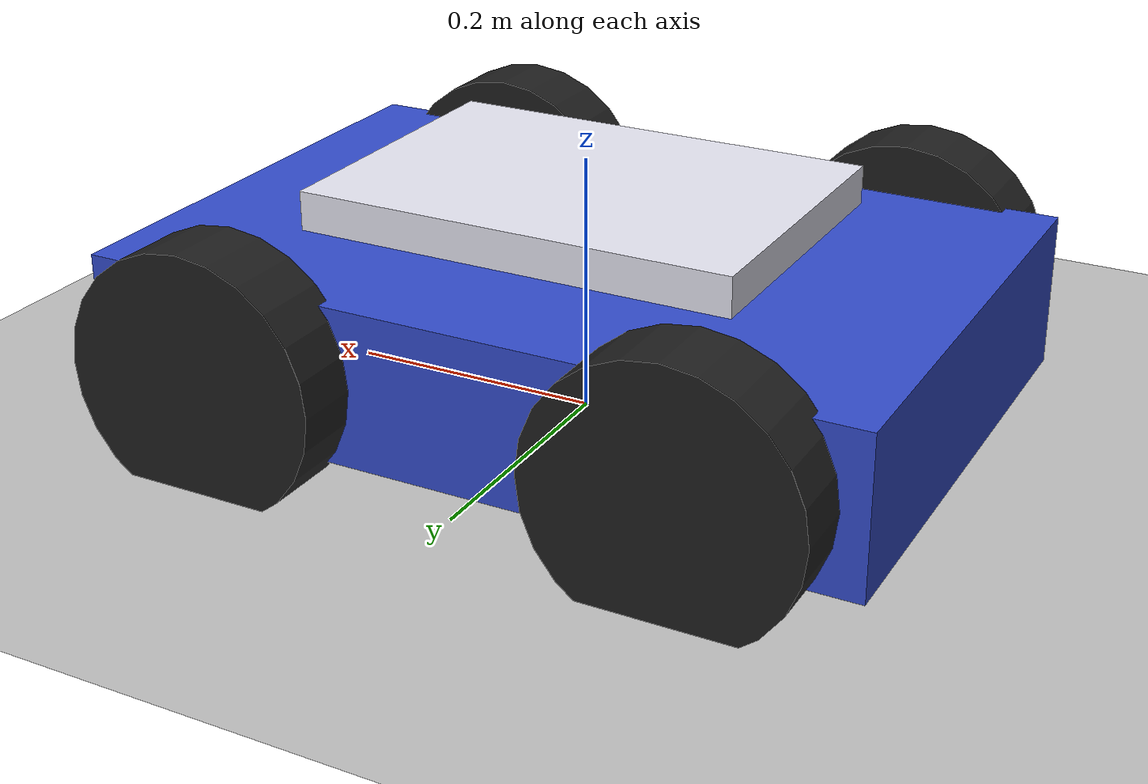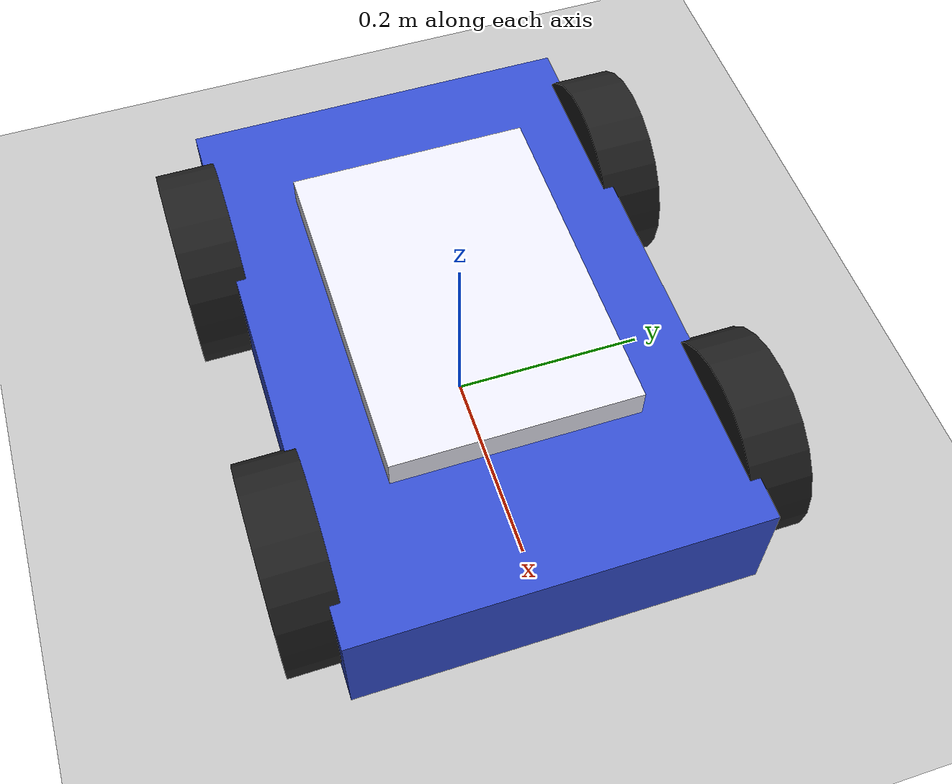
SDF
<?xml version="1.0"?>
<sdf version="1.9">
  <world name="basic_vehicle_world">
    <gravity>0 0 -9.8</gravity>

    <plugin filename="gz-sim-physics-system" name="gz::sim::systems::Physics"/>
    <plugin filename="gz-sim-user-commands-system" name="gz::sim::systems::UserCommands"/>
    <plugin filename="gz-sim-scene-broadcaster-system" name="gz::sim::systems::SceneBroadcaster"/>
    <plugin filename="gz-sim-sensors-system" name="gz::sim::systems::Sensors">
      <render_engine>ogre2</render_engine>
    </plugin>

    <light name="sun" type="directional">
      <cast_shadows>true</cast_shadows>
      <pose>0 0 10 0 0 0</pose>
      <diffuse>0.9 0.9 0.9 1</diffuse>
      <specular>0.2 0.2 0.2 1</specular>
      <direction>-0.5 0.2 -1.0</direction>
    </light>

    <model name="ground_plane">
      <static>true</static>
      <link name="link">
        <collision name="collision">
          <geometry>
            <plane>
              <normal>0 0 1</normal>
              <size>50 50</size>
            </plane>
          </geometry>
          <surface>
            <friction>
              <ode>
                <mu>1.0</mu>
                <mu2>1.0</mu2>
              </ode>
            </friction>
          </surface>
        </collision>
        <visual name="visual">
          <geometry>
            <plane>
              <normal>0 0 1</normal>
              <size>50 50</size>
            </plane>
          </geometry>
          <material>
            <ambient>0.7 0.7 0.7 1</ambient>
            <diffuse>0.75 0.75 0.75 1</diffuse>
          </material>
        </visual>
      </link>
    </model>

    <include>
      <uri>model://basic_vehicle</uri>
      <pose>0 0 0 0 0 0</pose>
    </include>
  </world>
</sdf>

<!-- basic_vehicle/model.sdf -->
<sdf version="1.9">
  <model name="basic_vehicle">
    <pose>0 0 0.12 0 0 0</pose>
    <self_collide>false</self_collide>
    <static>false</static>

    <link name="base_link">
      <pose>0 0 0.08 0 0 0</pose>
      <inertial>
        <mass>8.0</mass>
        <inertia>
          <ixx>0.1200</ixx>
          <iyy>0.2867</iyy>
          <izz>0.3667</izz>
          <ixy>0.0</ixy>
          <ixz>0.0</ixz>
          <iyz>0.0</iyz>
        </inertia>
      </inertial>
      <collision name="base_collision">
        <geometry>
          <box>
            <size>0.6 0.4 0.12</size>
          </box>
        </geometry>
      </collision>
      <visual name="base_visual">
        <geometry>
          <box>
            <size>0.6 0.4 0.12</size>
          </box>
        </geometry>
        <material>
          <ambient>0.15 0.2 0.65 1</ambient>
          <diffuse>0.2 0.3 0.8 1</diffuse>
        </material>
      </visual>
      <visual name="top_plate_visual">
        <pose>0 0 0.09 0 0 0</pose>
        <geometry>
          <box>
            <size>0.34 0.24 0.03</size>
          </box>
        </geometry>
        <material>
          <ambient>0.85 0.85 0.9 1</ambient>
          <diffuse>0.9 0.9 0.95 1</diffuse>
        </material>
      </visual>
    </link>

    <link name="front_left_wheel">
      <pose>0.18 0.22 0.08 1.57079632679 0 0</pose>
      <inertial>
        <mass>1.0</mass>
        <inertia>
          <ixx>0.00335</ixx>
          <iyy>0.00180</iyy>
          <izz>0.00180</izz>
          <ixy>0.0</ixy>
          <ixz>0.0</ixz>
          <iyz>0.0</iyz>
        </inertia>
      </inertial>
      <collision name="front_left_wheel_collision">
        <geometry>
          <cylinder>
            <radius>0.1</radius>
            <length>0.06</length>
          </cylinder>
        </geometry>
        <surface>
          <friction>
            <ode>
              <mu>1.5</mu>
              <mu2>1.5</mu2>
            </ode>
          </friction>
        </surface>
      </collision>
      <visual name="front_left_wheel_visual">
        <geometry>
          <cylinder>
            <radius>0.1</radius>
            <length>0.06</length>
          </cylinder>
        </geometry>
        <material>
          <ambient>0.1 0.1 0.1 1</ambient>
          <diffuse>0.12 0.12 0.12 1</diffuse>
        </material>
      </visual>
    </link>

    <link name="rear_left_wheel">
      <pose>-0.18 0.22 0.08 1.57079632679 0 0</pose>
      <inertial>
        <mass>1.0</mass>
        <inertia>
          <ixx>0.00335</ixx>
          <iyy>0.00180</iyy>
          <izz>0.00180</izz>
          <ixy>0.0</ixy>
          <ixz>0.0</ixz>
          <iyz>0.0</iyz>
        </inertia>
      </inertial>
      <collision name="rear_left_wheel_collision">
        <geometry>
          <cylinder>
            <radius>0.1</radius>
            <length>0.06</length>
          </cylinder>
        </geometry>
        <surface>
          <friction>
            <ode>
              <mu>1.5</mu>
              <mu2>1.5</mu2>
            </ode>
          </friction>
        </surface>
      </collision>
      <visual name="rear_left_wheel_visual">
        <geometry>
          <cylinder>
            <radius>0.1</radius>
            <length>0.06</length>
          </cylinder>
        </geometry>
        <material>
          <ambient>0.1 0.1 0.1 1</ambient>
          <diffuse>0.12 0.12 0.12 1</diffuse>
        </material>
      </visual>
    </link>

    <link name="front_right_wheel">
      <pose>0.18 -0.22 0.08 1.57079632679 0 0</pose>
      <inertial>
        <mass>1.0</mass>
        <inertia>
          <ixx>0.00335</ixx>
          <iyy>0.00180</iyy>
          <izz>0.00180</izz>
          <ixy>0.0</ixy>
          <ixz>0.0</ixz>
          <iyz>0.0</iyz>
        </inertia>
      </inertial>
      <collision name="front_right_wheel_collision">
        <geometry>
          <cylinder>
            <radius>0.1</radius>
            <length>0.06</length>
          </cylinder>
        </geometry>
        <surface>
          <friction>
            <ode>
              <mu>1.5</mu>
              <mu2>1.5</mu2>
            </ode>
          </friction>
        </surface>
      </collision>
      <visual name="front_right_wheel_visual">
        <geometry>
          <cylinder>
            <radius>0.1</radius>
            <length>0.06</length>
          </cylinder>
        </geometry>
        <material>
          <ambient>0.1 0.1 0.1 1</ambient>
          <diffuse>0.12 0.12 0.12 1</diffuse>
        </material>
      </visual>
    </link>

    <link name="rear_right_wheel">
      <pose>-0.18 -0.22 0.08 1.57079632679 0 0</pose>
      <inertial>
        <mass>1.0</mass>
        <inertia>
          <ixx>0.00335</ixx>
          <iyy>0.00180</iyy>
          <izz>0.00180</izz>
          <ixy>0.0</ixy>
          <ixz>0.0</ixz>
          <iyz>0.0</iyz>
        </inertia>
      </inertial>
      <collision name="rear_right_wheel_collision">
        <geometry>
          <cylinder>
            <radius>0.1</radius>
            <length>0.06</length>
          </cylinder>
        </geometry>
        <surface>
          <friction>
            <ode>
              <mu>1.5</mu>
              <mu2>1.5</mu2>
            </ode>
          </friction>
        </surface>
      </collision>
      <visual name="rear_right_wheel_visual">
        <geometry>
          <cylinder>
            <radius>0.1</radius>
            <length>0.06</length>
          </cylinder>
        </geometry>
        <material>
          <ambient>0.1 0.1 0.1 1</ambient>
          <diffuse>0.12 0.12 0.12 1</diffuse>
        </material>
      </visual>
    </link>

    <joint name="front_left_wheel_joint" type="revolute">
      <parent>base_link</parent>
      <child>front_left_wheel</child>
      <pose relative_to="base_link">0.18 0.22 0 0 0 0</pose>
      <axis>
        <xyz expressed_in="__model__">0 1 0</xyz>
        <limit>
          <lower>-1000000</lower>
          <upper>1000000</upper>
          <effort>40</effort>
          <velocity>30</velocity>
        </limit>
        <dynamics>
          <damping>0.2</damping>
          <friction>0.0</friction>
        </dynamics>
      </axis>
    </joint>

    <joint name="rear_left_wheel_joint" type="revolute">
      <parent>base_link</parent>
      <child>rear_left_wheel</child>
      <pose relative_to="base_link">-0.18 0.22 0 0 0 0</pose>
      <axis>
        <xyz expressed_in="__model__">0 1 0</xyz>
        <limit>
          <lower>-1000000</lower>
          <upper>1000000</upper>
          <effort>40</effort>
          <velocity>30</velocity>
        </limit>
        <dynamics>
          <damping>0.2</damping>
          <friction>0.0</friction>
        </dynamics>
      </axis>
    </joint>

    <joint name="front_right_wheel_joint" type="revolute">
      <parent>base_link</parent>
      <child>front_right_wheel</child>
      <pose relative_to="base_link">0.18 -0.22 0 0 0 0</pose>
      <axis>
        <xyz expressed_in="__model__">0 1 0</xyz>
        <limit>
          <lower>-1000000</lower>
          <upper>1000000</upper>
          <effort>40</effort>
          <velocity>30</velocity>
        </limit>
        <dynamics>
          <damping>0.2</damping>
          <friction>0.0</friction>
        </dynamics>
      </axis>
    </joint>

    <joint name="rear_right_wheel_joint" type="revolute">
      <parent>base_link</parent>
      <child>rear_right_wheel</child>
      <pose relative_to="base_link">-0.18 -0.22 0 0 0 0</pose>
      <axis>
        <xyz expressed_in="__model__">0 1 0</xyz>
        <limit>
          <lower>-1000000</lower>
          <upper>1000000</upper>
          <effort>40</effort>
          <velocity>30</velocity>
        </limit>
        <dynamics>
          <damping>0.2</damping>
          <friction>0.0</friction>
        </dynamics>
      </axis>
    </joint>

    <plugin filename="gz-sim-diff-drive-system" name="gz::sim::systems::DiffDrive">
      <left_joint>front_left_wheel_joint</left_joint>
      <left_joint>rear_left_wheel_joint</left_joint>
      <right_joint>front_right_wheel_joint</right_joint>
      <right_joint>rear_right_wheel_joint</right_joint>
      <wheel_separation>0.44</wheel_separation>
      <wheel_radius>0.10</wheel_radius>
      <topic>/cmd_vel</topic>
      <odom_topic>/odom</odom_topic>
      <frame_id>odom</frame_id>
      <child_frame_id>base_link</child_frame_id>
      <odom_publish_frequency>30</odom_publish_frequency>
      <max_linear_acceleration>2.0</max_linear_acceleration>
      <max_angular_acceleration>3.0</max_angular_acceleration>
      <max_linear_velocity>1.5</max_linear_velocity>
      <max_angular_velocity>2.5</max_angular_velocity>
    </plugin>

    <plugin filename="gz-sim-joint-state-publisher-system" name="gz::sim::systems::JointStatePublisher">
      <topic>/world/basic_vehicle_world/model/basic_vehicle/joint_state</topic>
    </plugin>
  </model>
</sdf>
